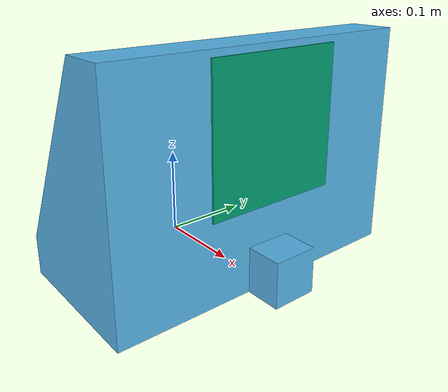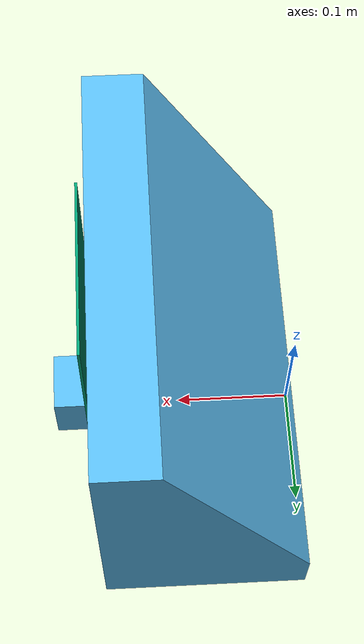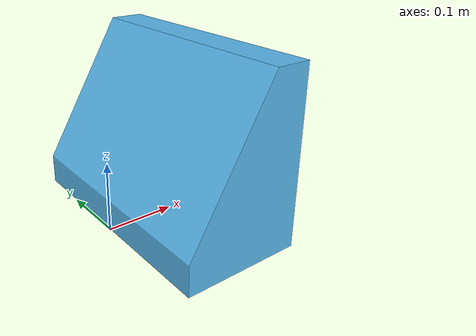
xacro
<?xml version="1.0"?>

<!-- The root link charge_doc_base_link has an inertia specified in the URDF,
but KDL does not support a root link with an inertia.
As a workaround, you can add an extra dummy link to your URDF. -->

<robot name="charge_doc" xmlns:xacro="http://ros.org/wiki/xacro">
  <link name="station_base_link"/>
  <joint name="base_joint" type="fixed">
    <parent link="station_base_link"/>
    <child link="charge_doc_base_link"/>
  </joint>

  <link name="charge_doc_base_link">
    <visual>
      <origin rpy="0 0 0" xyz="0 0 0.001"/>
      <geometry>
        <mesh filename="package://cube_petit_gazebo/models/charge_doc/meshes/charge_doc_petit_position.obj"/>
      </geometry>
    </visual>
    <collision>
      <origin rpy="0 0 0" xyz="0 0 0.001"/>
      <geometry>
        <mesh filename="package://cube_petit_gazebo/models/charge_doc/meshes/charge_doc_petit_collition.obj"/>
      </geometry>
    </collision>
    <inertial>
      <origin xyz="0.17452636 -0.00298654 0.07127788" rpy="0 0 0"/>
      <mass value="1.46766774"/>
      <inertia ixx="0.02610496"
               ixy="-0.00024060" iyy="0.02669320"
               ixz="0.00259484" iyz="0.00024104" izz="0.03293260"/>
    </inertial>
  </link>

  <joint name="station_to_ar_joint" type="fixed">
    <parent link="charge_doc_base_link"/>
    <child link="station_ar_link"/>
    <origin xyz="0.176 0 0.17" rpy="0 0 0"/>
  </joint>
  <link name="station_ar_link">
    <visual>
      <origin rpy="0 0 0" xyz="0 0 0.0"/>
      <geometry>
        <mesh filename="package://cube_petit_gazebo/models/charge_doc/meshes/ArTag012.obj"/>
      </geometry>
    </visual>
  </link>

  <!-- Charging Connector -->
  <joint name="charge_doc_to_connector_joint" type="fixed">
    <parent link="charge_doc_base_link"/>
    <child link="charge_doc_connector_link"/>
    <origin xyz="0.242 0 0" rpy="0 0 0"/>
  </joint>
  <link name="charge_doc_connector_link"/>

  <!-- Gazebo Physical Parameters -->
  <gazebo reference="station_base_link">
  </gazebo>

  <gazebo>
    <!-- Fix station onto the gazebo world -->
    <static>true</static>
    <!-- Publish position topic (which is used in simulation of charging station) -->
    <plugin name="publish_station_pose" filename="libgazebo_ros_p3d.so">
      <frameName>world</frameName>
      <bodyName>station_base_link</bodyName>
      <topicName>/gazebo/docking_station_simulation/station_pose</topicName>
      <updateRate>30.0</updateRate>
    </plugin>
  </gazebo>

</robot>
